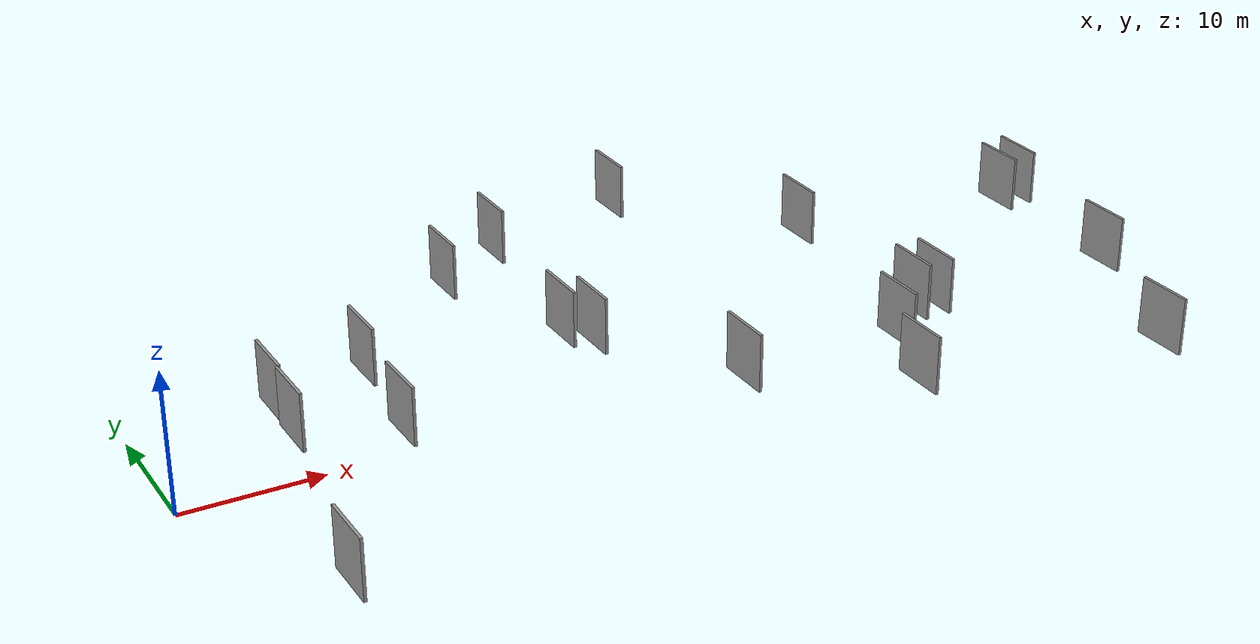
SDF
<sdf version="1.6">
 <world name="default">
  <scene>
   <sky><clouds><speed>12</speed></clouds></sky>
   <ambient>0.4 0.4 0.4 1</ambient>
   <background>0.7 0.7 0.7 1</background>
   <shadows>1</shadows>
  </scene>
  <gravity>0 0 -9.8066</gravity>
  <magnetic_field>6e-06 2.3e-05 -4.2e-05</magnetic_field>
  <physics default="0" name="default_physics" type="ode">
   <ode>
    <solver>
     <type>quick</type>
     <iters>10</iters>
     <sor>1.0</sor>
     <use_dynamic_moi_rescaling>0</use_dynamic_moi_rescaling>
    </solver>
    <constraints>
     <cfm>0</cfm>
     <erp>0.2</erp>
     <contact_max_correcting_vel>100</contact_max_correcting_vel>
     <contact_surface_layer>0.001</contact_surface_layer>
    </constraints>
   </ode>
   <max_step_size>0.004</max_step_size>
   <real_time_factor>1</real_time_factor>
   <real_time_update_rate>250</real_time_update_rate>
  </physics>
  <light name="sun" type="directional">
   <pose>0 0 10 0 0 0</pose>
   <diffuse>0.8 0.8 0.8 1</diffuse>
   <specular>0.2 0.2 0.2 1</specular>
   <attenuation>
    <range>1000</range>
    <constant>0.9</constant>
    <linear>0.01</linear>
    <quadratic>0.001</quadratic>
   </attenuation>
   <direction>-0.5 0.1 -0.9</direction>
  </light>
  <model name="grey_wall_1">
   <static>1</static>
   <pose>46.5897 -9.6157 5.0 0.000000 0.000000 1.570796</pose>
   <link name="link">
    <pose>0 0 2.00 0 0 0</pose>
    <collision name="collision"><geometry><box><size>4.00 0.2 4.00</size></box></geometry></collision>
    <visual name="visual">
     <cast_shadows>0</cast_shadows>
     <geometry><box><size>4.00 0.2 4.00</size></box></geometry>
     <material>
      <script>
       <uri>model://grey_wall/materials/scripts</uri>
       <uri>model://grey_wall/materials/textures</uri>
       <name>vrc/grey_wall</name>
      </script>
     </material>
    </visual>
   </link>
  </model>
  <model name="grey_wall_2">
   <static>1</static>
   <pose>51.8691 -6.4325 5.0 0.000000 0.000000 1.570796</pose>
   <link name="link">
    <pose>0 0 2.00 0 0 0</pose>
    <collision name="collision"><geometry><box><size>4.00 0.2 4.00</size></box></geometry></collision>
    <visual name="visual">
     <cast_shadows>0</cast_shadows>
     <geometry><box><size>4.00 0.2 4.00</size></box></geometry>
     <material>
      <script>
       <uri>model://grey_wall/materials/scripts</uri>
       <uri>model://grey_wall/materials/textures</uri>
       <name>vrc/grey_wall</name>
      </script>
     </material>
    </visual>
   </link>
  </model>
  <model name="grey_wall_3">
   <static>1</static>
   <pose>12.9789 -5.5692 5.0 0.000000 0.000000 1.570796</pose>
   <link name="link">
    <pose>0 0 2.00 0 0 0</pose>
    <collision name="collision"><geometry><box><size>4.00 0.2 4.00</size></box></geometry></collision>
    <visual name="visual">
     <cast_shadows>0</cast_shadows>
     <geometry><box><size>4.00 0.2 4.00</size></box></geometry>
     <material>
      <script>
       <uri>model://grey_wall/materials/scripts</uri>
       <uri>model://grey_wall/materials/textures</uri>
       <name>vrc/grey_wall</name>
      </script>
     </material>
    </visual>
   </link>
  </model>
  <model name="grey_wall_4">
   <static>1</static>
   <pose>3.8547 -19.6435 5.0 0.000000 0.000000 1.570796</pose>
   <link name="link">
    <pose>0 0 2.00 0 0 0</pose>
    <collision name="collision"><geometry><box><size>4.00 0.2 4.00</size></box></geometry></collision>
    <visual name="visual">
     <cast_shadows>0</cast_shadows>
     <geometry><box><size>4.00 0.2 4.00</size></box></geometry>
     <material>
      <script>
       <uri>model://grey_wall/materials/scripts</uri>
       <uri>model://grey_wall/materials/textures</uri>
       <name>vrc/grey_wall</name>
      </script>
     </material>
    </visual>
   </link>
  </model>
  <model name="grey_wall_5">
   <static>1</static>
   <pose>29.0336 15.4790 5.0 0.000000 0.000000 1.570796</pose>
   <link name="link">
    <pose>0 0 2.00 0 0 0</pose>
    <collision name="collision"><geometry><box><size>4.00 0.2 4.00</size></box></geometry></collision>
    <visual name="visual">
     <cast_shadows>0</cast_shadows>
     <geometry><box><size>4.00 0.2 4.00</size></box></geometry>
     <material>
      <script>
       <uri>model://grey_wall/materials/scripts</uri>
       <uri>model://grey_wall/materials/textures</uri>
       <name>vrc/grey_wall</name>
      </script>
     </material>
    </visual>
   </link>
  </model>
  <model name="grey_wall_6">
   <static>1</static>
   <pose>66.1604 -6.7629 5.0 0.000000 0.000000 1.570796</pose>
   <link name="link">
    <pose>0 0 2.00 0 0 0</pose>
    <collision name="collision"><geometry><box><size>4.00 0.2 4.00</size></box></geometry></collision>
    <visual name="visual">
     <cast_shadows>0</cast_shadows>
     <geometry><box><size>4.00 0.2 4.00</size></box></geometry>
     <material>
      <script>
       <uri>model://grey_wall/materials/scripts</uri>
       <uri>model://grey_wall/materials/textures</uri>
       <name>vrc/grey_wall</name>
      </script>
     </material>
    </visual>
   </link>
  </model>
  <model name="grey_wall_7">
   <static>1</static>
   <pose>28.7268 -0.4968 5.0 0.000000 0.000000 1.570796</pose>
   <link name="link">
    <pose>0 0 2.00 0 0 0</pose>
    <collision name="collision"><geometry><box><size>4.00 0.2 4.00</size></box></geometry></collision>
    <visual name="visual">
     <cast_shadows>0</cast_shadows>
     <geometry><box><size>4.00 0.2 4.00</size></box></geometry>
     <material>
      <script>
       <uri>model://grey_wall/materials/scripts</uri>
       <uri>model://grey_wall/materials/textures</uri>
       <name>vrc/grey_wall</name>
      </script>
     </material>
    </visual>
   </link>
  </model>
  <model name="grey_wall_8">
   <static>1</static>
   <pose>44.2396 -15.4616 5.0 0.000000 0.000000 1.570796</pose>
   <link name="link">
    <pose>0 0 2.00 0 0 0</pose>
    <collision name="collision"><geometry><box><size>4.00 0.2 4.00</size></box></geometry></collision>
    <visual name="visual">
     <cast_shadows>0</cast_shadows>
     <geometry><box><size>4.00 0.2 4.00</size></box></geometry>
     <material>
      <script>
       <uri>model://grey_wall/materials/scripts</uri>
       <uri>model://grey_wall/materials/textures</uri>
       <name>vrc/grey_wall</name>
      </script>
     </material>
    </visual>
   </link>
  </model>
  <model name="grey_wall_9">
   <static>1</static>
   <pose>23.6025 11.8069 5.0 0.000000 0.000000 1.570796</pose>
   <link name="link">
    <pose>0 0 2.00 0 0 0</pose>
    <collision name="collision"><geometry><box><size>4.00 0.2 4.00</size></box></geometry></collision>
    <visual name="visual">
     <cast_shadows>0</cast_shadows>
     <geometry><box><size>4.00 0.2 4.00</size></box></geometry>
     <material>
      <script>
       <uri>model://grey_wall/materials/scripts</uri>
       <uri>model://grey_wall/materials/textures</uri>
       <name>vrc/grey_wall</name>
      </script>
     </material>
    </visual>
   </link>
  </model>
  <model name="grey_wall_10">
   <static>1</static>
   <pose>34.7187 -9.7975 5.0 0.000000 0.000000 1.570796</pose>
   <link name="link">
    <pose>0 0 2.00 0 0 0</pose>
    <collision name="collision"><geometry><box><size>4.00 0.2 4.00</size></box></geometry></collision>
    <visual name="visual">
     <cast_shadows>0</cast_shadows>
     <geometry><box><size>4.00 0.2 4.00</size></box></geometry>
     <material>
      <script>
       <uri>model://grey_wall/materials/scripts</uri>
       <uri>model://grey_wall/materials/textures</uri>
       <name>vrc/grey_wall</name>
      </script>
     </material>
    </visual>
   </link>
  </model>
  <model name="grey_wall_11">
   <static>1</static>
   <pose>40.2103 18.5304 5.0 0.000000 0.000000 1.570796</pose>
   <link name="link">
    <pose>0 0 2.00 0 0 0</pose>
    <collision name="collision"><geometry><box><size>4.00 0.2 4.00</size></box></geometry></collision>
    <visual name="visual">
     <cast_shadows>0</cast_shadows>
     <geometry><box><size>4.00 0.2 4.00</size></box></geometry>
     <material>
      <script>
       <uri>model://grey_wall/materials/scripts</uri>
       <uri>model://grey_wall/materials/textures</uri>
       <name>vrc/grey_wall</name>
      </script>
     </material>
    </visual>
   </link>
  </model>
  <model name="grey_wall_12">
   <static>1</static>
   <pose>13.8999 2.7781 5.0 0.000000 0.000000 1.570796</pose>
   <link name="link">
    <pose>0 0 2.00 0 0 0</pose>
    <collision name="collision"><geometry><box><size>4.00 0.2 4.00</size></box></geometry></collision>
    <visual name="visual">
     <cast_shadows>0</cast_shadows>
     <geometry><box><size>4.00 0.2 4.00</size></box></geometry>
     <material>
      <script>
       <uri>model://grey_wall/materials/scripts</uri>
       <uri>model://grey_wall/materials/textures</uri>
       <name>vrc/grey_wall</name>
      </script>
     </material>
    </visual>
   </link>
  </model>
  <model name="grey_wall_13">
   <static>1</static>
   <pose>49.9307 7.6581 5.0 0.000000 0.000000 1.570796</pose>
   <link name="link">
    <pose>0 0 2.00 0 0 0</pose>
    <collision name="collision"><geometry><box><size>4.00 0.2 4.00</size></box></geometry></collision>
    <visual name="visual">
     <cast_shadows>0</cast_shadows>
     <geometry><box><size>4.00 0.2 4.00</size></box></geometry>
     <material>
      <script>
       <uri>model://grey_wall/materials/scripts</uri>
       <uri>model://grey_wall/materials/textures</uri>
       <name>vrc/grey_wall</name>
      </script>
     </material>
    </visual>
   </link>
  </model>
  <model name="grey_wall_14">
   <static>1</static>
   <pose>61.2396 -18.7305 5.0 0.000000 0.000000 1.570796</pose>
   <link name="link">
    <pose>0 0 2.00 0 0 0</pose>
    <collision name="collision"><geometry><box><size>4.00 0.2 4.00</size></box></geometry></collision>
    <visual name="visual">
     <cast_shadows>0</cast_shadows>
     <geometry><box><size>4.00 0.2 4.00</size></box></geometry>
     <material>
      <script>
       <uri>model://grey_wall/materials/scripts</uri>
       <uri>model://grey_wall/materials/textures</uri>
       <name>vrc/grey_wall</name>
      </script>
     </material>
    </visual>
   </link>
  </model>
  <model name="grey_wall_15">
   <static>1</static>
   <pose>7.0506 1.0303 5.0 0.000000 0.000000 1.570796</pose>
   <link name="link">
    <pose>0 0 2.00 0 0 0</pose>
    <collision name="collision"><geometry><box><size>4.00 0.2 4.00</size></box></geometry></collision>
    <visual name="visual">
     <cast_shadows>0</cast_shadows>
     <geometry><box><size>4.00 0.2 4.00</size></box></geometry>
     <material>
      <script>
       <uri>model://grey_wall/materials/scripts</uri>
       <uri>model://grey_wall/materials/textures</uri>
       <name>vrc/grey_wall</name>
      </script>
     </material>
    </visual>
   </link>
  </model>
  <model name="grey_wall_16">
   <static>1</static>
   <pose>27.3882 1.3855 5.0 0.000000 0.000000 1.570796</pose>
   <link name="link">
    <pose>0 0 2.00 0 0 0</pose>
    <collision name="collision"><geometry><box><size>4.00 0.2 4.00</size></box></geometry></collision>
    <visual name="visual">
     <cast_shadows>0</cast_shadows>
     <geometry><box><size>4.00 0.2 4.00</size></box></geometry>
     <material>
      <script>
       <uri>model://grey_wall/materials/scripts</uri>
       <uri>model://grey_wall/materials/textures</uri>
       <name>vrc/grey_wall</name>
      </script>
     </material>
    </visual>
   </link>
  </model>
  <model name="grey_wall_17">
   <static>1</static>
   <pose>49.9851 -6.4682 5.0 0.000000 0.000000 1.570796</pose>
   <link name="link">
    <pose>0 0 2.00 0 0 0</pose>
    <collision name="collision"><geometry><box><size>4.00 0.2 4.00</size></box></geometry></collision>
    <visual name="visual">
     <cast_shadows>0</cast_shadows>
     <geometry><box><size>4.00 0.2 4.00</size></box></geometry>
     <material>
      <script>
       <uri>model://grey_wall/materials/scripts</uri>
       <uri>model://grey_wall/materials/textures</uri>
       <name>vrc/grey_wall</name>
      </script>
     </material>
    </visual>
   </link>
  </model>
  <model name="grey_wall_18">
   <static>1</static>
   <pose>68.4308 5.9860 5.0 0.000000 0.000000 1.570796</pose>
   <link name="link">
    <pose>0 0 2.00 0 0 0</pose>
    <collision name="collision"><geometry><box><size>4.00 0.2 4.00</size></box></geometry></collision>
    <visual name="visual">
     <cast_shadows>0</cast_shadows>
     <geometry><box><size>4.00 0.2 4.00</size></box></geometry>
     <material>
      <script>
       <uri>model://grey_wall/materials/scripts</uri>
       <uri>model://grey_wall/materials/textures</uri>
       <name>vrc/grey_wall</name>
      </script>
     </material>
    </visual>
   </link>
  </model>
  <model name="grey_wall_19">
   <static>1</static>
   <pose>66.3698 5.5886 5.0 0.000000 0.000000 1.570796</pose>
   <link name="link">
    <pose>0 0 2.00 0 0 0</pose>
    <collision name="collision"><geometry><box><size>4.00 0.2 4.00</size></box></geometry></collision>
    <visual name="visual">
     <cast_shadows>0</cast_shadows>
     <geometry><box><size>4.00 0.2 4.00</size></box></geometry>
     <material>
      <script>
       <uri>model://grey_wall/materials/scripts</uri>
       <uri>model://grey_wall/materials/textures</uri>
       <name>vrc/grey_wall</name>
      </script>
     </material>
    </visual>
   </link>
  </model>
  <model name="grey_wall_20">
   <static>1</static>
   <pose>6.8813 -2.9836 5.0 0.000000 0.000000 1.570796</pose>
   <link name="link">
    <pose>0 0 2.00 0 0 0</pose>
    <collision name="collision"><geometry><box><size>4.00 0.2 4.00</size></box></geometry></collision>
    <visual name="visual">
     <cast_shadows>0</cast_shadows>
     <geometry><box><size>4.00 0.2 4.00</size></box></geometry>
     <material>
      <script>
       <uri>model://grey_wall/materials/scripts</uri>
       <uri>model://grey_wall/materials/textures</uri>
       <name>vrc/grey_wall</name>
      </script>
     </material>
    </visual>
   </link>
  </model>
 </world>
</sdf>
